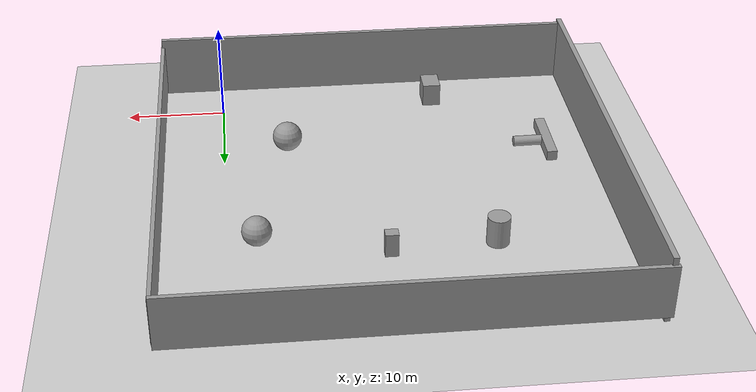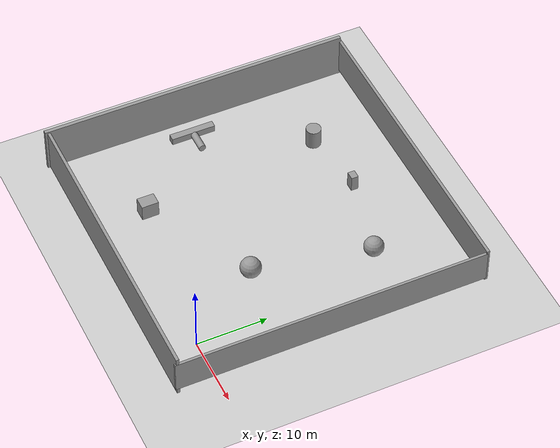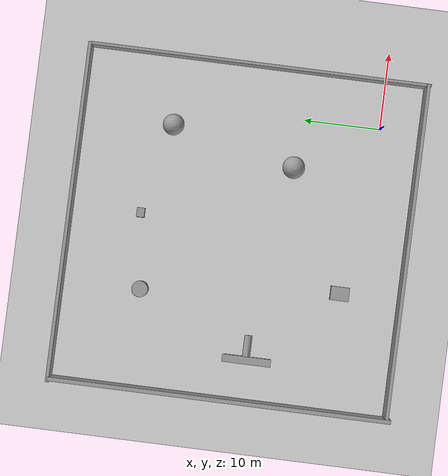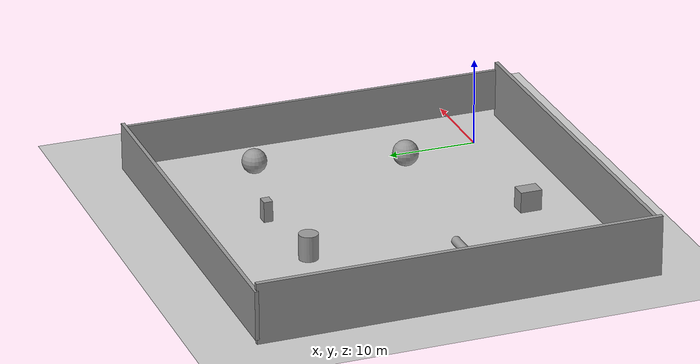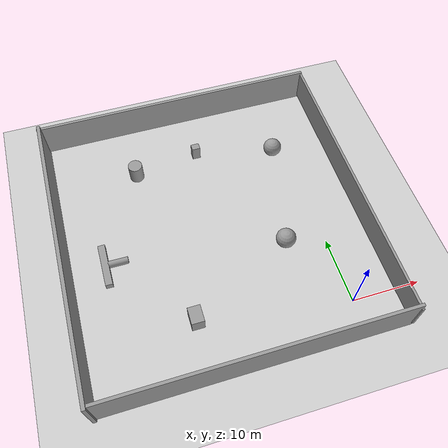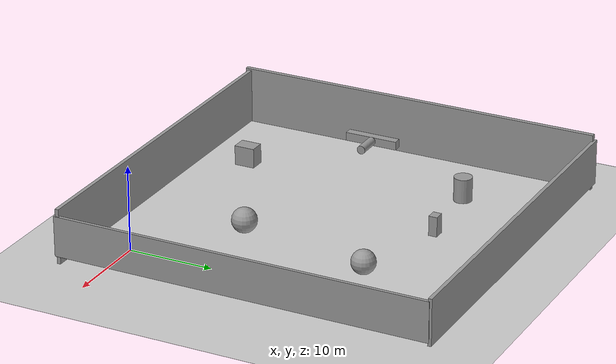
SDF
<sdf version="1.7">
 <world name="default">
  <light name="sun" type="directional">
   <pose>0 0 10 0 -0 0</pose>
   <diffuse>0.8 0.8 0.8 1</diffuse>
   <specular>0.2 0.2 0.2 1</specular>
   <attenuation>
    <range>1000</range>
    <constant>0.9</constant>
    <linear>0.01</linear>
    <quadratic>0.001</quadratic>
   </attenuation>
   <direction>-0.5 0.1 -0.9</direction>
   <spot><inner_angle>0</inner_angle><outer_angle>0</outer_angle><falloff>0</falloff></spot>
  </light>
  <model name="ground_plane">
   <static>1</static>
   <link name="link">
    <collision name="collision">
     <geometry><plane><normal>0 0 1</normal><size>100 100</size></plane></geometry>
     <surface><friction><ode><mu>100</mu><mu2>50</mu2></ode></friction></surface>
    </collision>
    <visual name="visual">
     <cast_shadows>0</cast_shadows>
     <geometry><plane><normal>0 0 1</normal><size>100 100</size></plane></geometry>
     <material>
      <script><uri>file://media/materials/scripts/gazebo.material</uri><name>Gazebo/Grey</name></script>
     </material>
    </visual>
   </link>
  </model>
  <gravity>0 0 -9.8</gravity>
  <magnetic_field>6e-06 2.3e-05 -4.2e-05</magnetic_field>
  <atmosphere type="adiabatic"/>
  <physics type="ode">
   <max_step_size>0.001</max_step_size>
   <real_time_factor>1</real_time_factor>
   <real_time_update_rate>1000</real_time_update_rate>
  </physics>
  <scene><ambient>0.4 0.4 0.4 1</ambient><background>0.7 0.7 0.7 1</background><shadows>1</shadows></scene>
  <spherical_coordinates>
   <surface_model>EARTH_WGS84</surface_model>
   <latitude_deg>0</latitude_deg>
   <longitude_deg>0</longitude_deg>
   <elevation>0</elevation>
   <heading_deg>0</heading_deg>
  </spherical_coordinates>
  <model name="drawmap">
   <link name="link">
    <inertial>
     <mass>125.383</mass>
     <inertia><ixx>439.645</ixx><ixy>0</ixy><ixz>0</ixz><iyy>20672.9</iyy><iyz>0</iyz><izz>20237.3</izz></inertia>
    </inertial>
    <pose>1.9998 -19.5076 -3e-06 0 -0 0</pose>
    <visual name="visual">
     <geometry><box><size>44.0074 0.440499 6.4717</size></box></geometry>
     <material>
      <script><name>Gazebo/Grey</name><uri>file://media/materials/scripts/gazebo.material</uri></script>
      <shader type="pixel"/>
     </material>
    </visual>
    <collision name="collision">
     <geometry><box><size>44.0074 0.440499 6.4717</size></box></geometry>
     <surface>
      <friction>
       <ode><mu>1</mu><mu2>1</mu2><fdir1>0 0 0</fdir1><slip1>0</slip1><slip2>0</slip2></ode>
       <torsional>
        <coefficient>1</coefficient>
        <patch_radius>0</patch_radius>
        <surface_radius>0</surface_radius>
        <use_patch_radius>1</use_patch_radius>
        <ode><slip>0</slip></ode>
       </torsional>
      </friction>
      <bounce><restitution_coefficient>0</restitution_coefficient><threshold>1e+06</threshold></bounce>
      <contact>
       <collide_without_contact>0</collide_without_contact>
       <collide_without_contact_bitmask>1</collide_without_contact_bitmask>
       <collide_bitmask>1</collide_bitmask>
       <ode>
        <soft_cfm>0</soft_cfm>
        <soft_erp>0.2</soft_erp>
        <kp>1e+13</kp>
        <kd>1</kd>
        <max_vel>0.01</max_vel>
        <min_depth>0</min_depth>
       </ode>
       <bullet>
        <split_impulse>1</split_impulse>
        <split_impulse_penetration_threshold>-0.01</split_impulse_penetration_threshold>
        <soft_cfm>0</soft_cfm>
        <soft_erp>0.2</soft_erp>
        <kp>1e+13</kp>
        <kd>1</kd>
       </bullet>
      </contact>
     </surface>
    </collision>
   </link>
   <link name="link_0">
    <inertial>
     <mass>102.937</mass>
     <inertia><ixx>252.539</ixx><ixy>0</ixy><ixz>0</ixz><iyy>17017.1</iyy><iyz>0</iyz><izz>16767.7</izz></inertia>
    </inertial>
    <pose>1.90836 24.4809 -0.000235 -1e-05 0 0</pose>
    <visual name="visual">
     <geometry><box><size>44.21 0.430597 5.40874</size></box></geometry>
     <material>
      <lighting>1</lighting>
      <script><uri>file://media/materials/scripts/gazebo.material</uri><name>Gazebo/Grey</name></script>
      <shader type="pixel"/>
     </material>
    </visual>
    <collision name="collision">
     <geometry><box><size>44.21 0.430597 5.40874</size></box></geometry>
     <surface>
      <friction>
       <ode><mu>1</mu><mu2>1</mu2><fdir1>0 0 0</fdir1><slip1>0</slip1><slip2>0</slip2></ode>
       <torsional>
        <coefficient>1</coefficient>
        <patch_radius>0</patch_radius>
        <surface_radius>0</surface_radius>
        <use_patch_radius>1</use_patch_radius>
        <ode><slip>0</slip></ode>
       </torsional>
      </friction>
      <bounce><restitution_coefficient>0</restitution_coefficient><threshold>1e+06</threshold></bounce>
      <contact>
       <collide_without_contact>0</collide_without_contact>
       <collide_without_contact_bitmask>1</collide_without_contact_bitmask>
       <collide_bitmask>1</collide_bitmask>
       <ode>
        <soft_cfm>0</soft_cfm>
        <soft_erp>0.2</soft_erp>
        <kp>1e+13</kp>
        <kd>1</kd>
        <max_vel>0.01</max_vel>
        <min_depth>0</min_depth>
       </ode>
       <bullet>
        <split_impulse>1</split_impulse>
        <split_impulse_penetration_threshold>-0.01</split_impulse_penetration_threshold>
        <soft_cfm>0</soft_cfm>
        <soft_erp>0.2</soft_erp>
        <kp>1e+13</kp>
        <kd>1</kd>
       </bullet>
      </contact>
     </surface>
    </collision>
   </link>
   <link name="link_1">
    <inertial>
     <mass>79.5946</mass>
     <inertia><ixx>13185.1</ixx><ixy>0</ixy><ixz>0</ixz><iyy>149.915</iyy><iyz>0</iyz><izz>13037.1</izz></inertia>
    </inertial>
    <pose>23.8999 2.25469 -1.7e-05 -1e-05 0 0</pose>
    <visual name="visual">
     <geometry><box><size>0.378952 44.3327 4.73901</size></box></geometry>
     <material>
      <lighting>1</lighting>
      <script><uri>file://media/materials/scripts/gazebo.material</uri><name>Gazebo/Grey</name></script>
      <shader type="pixel"/>
     </material>
    </visual>
    <collision name="collision">
     <geometry><box><size>0.378952 44.3327 4.73901</size></box></geometry>
     <surface>
      <friction>
       <ode><mu>1</mu><mu2>1</mu2><fdir1>0 0 0</fdir1><slip1>0</slip1><slip2>0</slip2></ode>
       <torsional>
        <coefficient>1</coefficient>
        <patch_radius>0</patch_radius>
        <surface_radius>0</surface_radius>
        <use_patch_radius>1</use_patch_radius>
        <ode><slip>0</slip></ode>
       </torsional>
      </friction>
      <bounce><restitution_coefficient>0</restitution_coefficient><threshold>1e+06</threshold></bounce>
      <contact>
       <collide_without_contact>0</collide_without_contact>
       <collide_without_contact_bitmask>1</collide_without_contact_bitmask>
       <collide_bitmask>1</collide_bitmask>
       <ode>
        <soft_cfm>0</soft_cfm>
        <soft_erp>0.2</soft_erp>
        <kp>1e+13</kp>
        <kd>1</kd>
        <max_vel>0.01</max_vel>
        <min_depth>0</min_depth>
       </ode>
       <bullet>
        <split_impulse>1</split_impulse>
        <split_impulse_penetration_threshold>-0.01</split_impulse_penetration_threshold>
        <soft_cfm>0</soft_cfm>
        <soft_erp>0.2</soft_erp>
        <kp>1e+13</kp>
        <kd>1</kd>
       </bullet>
      </contact>
     </surface>
    </collision>
   </link>
   <link name="link_2">
    <inertial>
     <mass>161.549</mass>
     <inertia><ixx>27290.4</ixx><ixy>0</ixy><ixz>0</ixz><iyy>646.814</iyy><iyz>0</iyz><izz>26651</izz></inertia>
    </inertial>
    <pose>-19.7468 2.19871 -1.7e-05 -1e-05 0 0</pose>
    <visual name="visual">
     <geometry><box><size>0.525287 44.4903 6.91158</size></box></geometry>
     <material>
      <lighting>1</lighting>
      <script><uri>file://media/materials/scripts/gazebo.material</uri><name>Gazebo/Grey</name></script>
      <shader type="pixel"/>
     </material>
    </visual>
    <collision name="collision">
     <geometry><box><size>0.525287 44.4903 6.91158</size></box></geometry>
     <surface>
      <friction>
       <ode><mu>1</mu><mu2>1</mu2><fdir1>0 0 0</fdir1><slip1>0</slip1><slip2>0</slip2></ode>
       <torsional>
        <coefficient>1</coefficient>
        <patch_radius>0</patch_radius>
        <surface_radius>0</surface_radius>
        <use_patch_radius>1</use_patch_radius>
        <ode><slip>0</slip></ode>
       </torsional>
      </friction>
      <bounce><restitution_coefficient>0</restitution_coefficient><threshold>1e+06</threshold></bounce>
      <contact>
       <collide_without_contact>0</collide_without_contact>
       <collide_without_contact_bitmask>1</collide_without_contact_bitmask>
       <collide_bitmask>1</collide_bitmask>
       <ode>
        <soft_cfm>0</soft_cfm>
        <soft_erp>0.2</soft_erp>
        <kp>1e+13</kp>
        <kd>1</kd>
        <max_vel>0.01</max_vel>
        <min_depth>0</min_depth>
       </ode>
       <bullet>
        <split_impulse>1</split_impulse>
        <split_impulse_penetration_threshold>-0.01</split_impulse_penetration_threshold>
        <soft_cfm>0</soft_cfm>
        <soft_erp>0.2</soft_erp>
        <kp>1e+13</kp>
        <kd>1</kd>
       </bullet>
      </contact>
     </surface>
    </collision>
   </link>
   <link name="link_3">
    <inertial>
     <mass>10.0397</mass>
     <inertia><ixx>9.39721</ixx><ixy>0</ixy><ixz>0</ixz><iyy>7.2248</iyy><iyz>0</iyz><izz>7.52538</izz></inertia>
    </inertial>
    <pose>-4.21846 -11.5843 0.008663 -1e-05 0 0</pose>
    <visual name="visual">
     <geometry><box><size>1.7886 2.40742 2.33161</size></box></geometry>
     <material>
      <lighting>1</lighting>
      <script><uri>file://media/materials/scripts/gazebo.material</uri><name>Gazebo/Grey</name></script>
      <shader type="pixel"/>
     </material>
    </visual>
    <collision name="collision">
     <geometry><box><size>1.7886 2.40742 2.33161</size></box></geometry>
     <surface>
      <friction>
       <ode><mu>1</mu><mu2>1</mu2><fdir1>0 0 0</fdir1><slip1>0</slip1><slip2>0</slip2></ode>
       <torsional>
        <coefficient>1</coefficient>
        <patch_radius>0</patch_radius>
        <surface_radius>0</surface_radius>
        <use_patch_radius>1</use_patch_radius>
        <ode><slip>0</slip></ode>
       </torsional>
      </friction>
      <bounce><restitution_coefficient>0</restitution_coefficient><threshold>1e+06</threshold></bounce>
      <contact>
       <collide_without_contact>0</collide_without_contact>
       <collide_without_contact_bitmask>1</collide_without_contact_bitmask>
       <collide_bitmask>1</collide_bitmask>
       <ode>
        <soft_cfm>0</soft_cfm>
        <soft_erp>0.2</soft_erp>
        <kp>1e+13</kp>
        <kd>1</kd>
        <max_vel>0.01</max_vel>
        <min_depth>0</min_depth>
       </ode>
       <bullet>
        <split_impulse>1</split_impulse>
        <split_impulse_penetration_threshold>-0.01</split_impulse_penetration_threshold>
        <soft_cfm>0</soft_cfm>
        <soft_erp>0.2</soft_erp>
        <kp>1e+13</kp>
        <kd>1</kd>
       </bullet>
      </contact>
     </surface>
    </collision>
   </link>
   <link name="link_4">
    <inertial>
     <mass>12.7062</mass>
     <inertia><ixx>12.0984</ixx><ixy>0</ixy><ixz>0</ixz><iyy>12.0984</iyy><iyz>0</iyz><izz>7.10261</izz></inertia>
    </inertial>
    <pose>-6.83841 14.1696 -0.000134 -1e-05 0 0</pose>
    <visual name="visual">
     <geometry><cylinder><radius>1.05734</radius><length>2.84113</length></cylinder></geometry>
     <material>
      <lighting>1</lighting>
      <script><uri>file://media/materials/scripts/gazebo.material</uri><name>Gazebo/Grey</name></script>
      <shader type="pixel"/>
     </material>
    </visual>
    <collision name="collision">
     <geometry><cylinder><radius>1.05734</radius><length>2.84113</length></cylinder></geometry>
     <surface>
      <friction>
       <ode><mu>1</mu><mu2>1</mu2><fdir1>0 0 0</fdir1><slip1>0</slip1><slip2>0</slip2></ode>
       <torsional>
        <coefficient>1</coefficient>
        <patch_radius>0</patch_radius>
        <surface_radius>0</surface_radius>
        <use_patch_radius>1</use_patch_radius>
        <ode><slip>0</slip></ode>
       </torsional>
      </friction>
      <bounce><restitution_coefficient>0</restitution_coefficient><threshold>1e+06</threshold></bounce>
      <contact>
       <collide_without_contact>0</collide_without_contact>
       <collide_without_contact_bitmask>1</collide_without_contact_bitmask>
       <collide_bitmask>1</collide_bitmask>
       <ode>
        <soft_cfm>0</soft_cfm>
        <soft_erp>0.2</soft_erp>
        <kp>1e+13</kp>
        <kd>1</kd>
        <max_vel>0.01</max_vel>
        <min_depth>0</min_depth>
       </ode>
       <bullet>
        <split_impulse>1</split_impulse>
        <split_impulse_penetration_threshold>-0.01</split_impulse_penetration_threshold>
        <soft_cfm>0</soft_cfm>
        <soft_erp>0.2</soft_erp>
        <kp>1e+13</kp>
        <kd>1</kd>
       </bullet>
      </contact>
     </surface>
    </collision>
   </link>
   <link name="link_5">
    <inertial>
     <mass>21.2102</mass>
     <inertia><ixx>16.252</ixx><ixy>0</ixy><ixz>0</ixz><iyy>16.252</iyy><iyz>0</iyz><izz>16.252</izz></inertia>
    </inertial>
    <pose>14.861 12.5331 0.125649 -1e-05 0 0</pose>
    <visual name="visual">
     <geometry><sphere><radius>1.38405</radius></sphere></geometry>
     <material>
      <lighting>1</lighting>
      <script><uri>file://media/materials/scripts/gazebo.material</uri><name>Gazebo/Grey</name></script>
      <shader type="pixel"/>
     </material>
    </visual>
    <collision name="collision">
     <geometry><sphere><radius>1.38405</radius></sphere></geometry>
     <surface>
      <friction>
       <ode><mu>1</mu><mu2>1</mu2><fdir1>0 0 0</fdir1><slip1>0</slip1><slip2>0</slip2></ode>
       <torsional>
        <coefficient>1</coefficient>
        <patch_radius>0</patch_radius>
        <surface_radius>0</surface_radius>
        <use_patch_radius>1</use_patch_radius>
        <ode><slip>0</slip></ode>
       </torsional>
      </friction>
      <bounce><restitution_coefficient>0</restitution_coefficient><threshold>1e+06</threshold></bounce>
      <contact>
       <collide_without_contact>0</collide_without_contact>
       <collide_without_contact_bitmask>1</collide_without_contact_bitmask>
       <collide_bitmask>1</collide_bitmask>
       <ode>
        <soft_cfm>0</soft_cfm>
        <soft_erp>0.2</soft_erp>
        <kp>1e+13</kp>
        <kd>1</kd>
        <max_vel>0.01</max_vel>
        <min_depth>0</min_depth>
       </ode>
       <bullet>
        <split_impulse>1</split_impulse>
        <split_impulse_penetration_threshold>-0.01</split_impulse_penetration_threshold>
        <soft_cfm>0</soft_cfm>
        <soft_erp>0.2</soft_erp>
        <kp>1e+13</kp>
        <kd>1</kd>
       </bullet>
      </contact>
     </surface>
    </collision>
   </link>
   <link name="link_6">
    <inertial>
     <mass>24.433</mass>
     <inertia><ixx>20.5727</ixx><ixy>0</ixy><ixz>0</ixz><iyy>20.5727</iyy><iyz>0</iyz><izz>20.5727</izz></inertia>
    </inertial>
    <pose>11.2895 -3.63527 4e-05 -1e-05 0 0</pose>
    <visual name="visual">
     <geometry><sphere><radius>1.45087</radius></sphere></geometry>
     <material>
      <lighting>1</lighting>
      <script><uri>file://media/materials/scripts/gazebo.material</uri><name>Gazebo/Grey</name></script>
      <shader type="pixel"/>
     </material>
    </visual>
    <collision name="collision">
     <geometry><sphere><radius>1.45087</radius></sphere></geometry>
     <surface>
      <friction>
       <ode><mu>1</mu><mu2>1</mu2><fdir1>0 0 0</fdir1><slip1>0</slip1><slip2>0</slip2></ode>
       <torsional>
        <coefficient>1</coefficient>
        <patch_radius>0</patch_radius>
        <surface_radius>0</surface_radius>
        <use_patch_radius>1</use_patch_radius>
        <ode><slip>0</slip></ode>
       </torsional>
      </friction>
      <bounce><restitution_coefficient>0</restitution_coefficient><threshold>1e+06</threshold></bounce>
      <contact>
       <collide_without_contact>0</collide_without_contact>
       <collide_without_contact_bitmask>1</collide_without_contact_bitmask>
       <collide_bitmask>1</collide_bitmask>
       <ode>
        <soft_cfm>0</soft_cfm>
        <soft_erp>0.2</soft_erp>
        <kp>1e+13</kp>
        <kd>1</kd>
        <max_vel>0.01</max_vel>
        <min_depth>0</min_depth>
       </ode>
       <bullet>
        <split_impulse>1</split_impulse>
        <split_impulse_penetration_threshold>-0.01</split_impulse_penetration_threshold>
        <soft_cfm>0</soft_cfm>
        <soft_erp>0.2</soft_erp>
        <kp>1e+13</kp>
        <kd>1</kd>
       </bullet>
      </contact>
     </surface>
    </collision>
   </link>
   <link name="link_7">
    <inertial>
     <mass>2.85741</mass>
     <inertia><ixx>1.52346</ixx><ixy>0</ixy><ixz>0</ixz><iyy>1.64552</iyy><iyz>0</iyz><izz>0.598295</izz></inertia>
    </inertial>
    <pose>2.99276 15.3201 -0.000145 -1e-05 0 0</pose>
    <visual name="visual">
     <geometry><box><size>1.22988 1 2.32334</size></box></geometry>
     <material>
      <lighting>1</lighting>
      <script><uri>file://media/materials/scripts/gazebo.material</uri><name>Gazebo/Grey</name></script>
      <shader type="pixel"/>
     </material>
    </visual>
    <collision name="collision">
     <geometry><box><size>1.22988 1 2.32334</size></box></geometry>
     <surface>
      <friction>
       <ode><mu>1</mu><mu2>1</mu2><fdir1>0 0 0</fdir1><slip1>0</slip1><slip2>0</slip2></ode>
       <torsional>
        <coefficient>1</coefficient>
        <patch_radius>0</patch_radius>
        <surface_radius>0</surface_radius>
        <use_patch_radius>1</use_patch_radius>
        <ode><slip>0</slip></ode>
       </torsional>
      </friction>
      <bounce><restitution_coefficient>0</restitution_coefficient><threshold>1e+06</threshold></bounce>
      <contact>
       <collide_without_contact>0</collide_without_contact>
       <collide_without_contact_bitmask>1</collide_without_contact_bitmask>
       <collide_bitmask>1</collide_bitmask>
       <ode>
        <soft_cfm>0</soft_cfm>
        <soft_erp>0.2</soft_erp>
        <kp>1e+13</kp>
        <kd>1</kd>
        <max_vel>0.01</max_vel>
        <min_depth>0</min_depth>
       </ode>
       <bullet>
        <split_impulse>1</split_impulse>
        <split_impulse_penetration_threshold>-0.01</split_impulse_penetration_threshold>
        <soft_cfm>0</soft_cfm>
        <soft_erp>0.2</soft_erp>
        <kp>1e+13</kp>
        <kd>1</kd>
       </bullet>
      </contact>
     </surface>
    </collision>
   </link>
   <link name="link_8">
    <inertial>
     <mass>6.3232</mass>
     <inertia><ixx>21.5953</ixx><ixy>0</ixy><ixz>0</ixz><iyy>1.05387</iyy><iyz>0</iyz><izz>21.5953</izz></inertia>
    </inertial>
    <pose>-14.3142 -0.664974 1.1e-05 -1e-05 0 0</pose>
    <visual name="visual">
     <geometry><box><size>1 6.32322 1</size></box></geometry>
     <material>
      <lighting>1</lighting>
      <script><uri>file://media/materials/scripts/gazebo.material</uri><name>Gazebo/Grey</name></script>
      <shader type="pixel"/>
     </material>
    </visual>
    <collision name="collision">
     <geometry><box><size>1 6.32322 1</size></box></geometry>
     <surface>
      <friction>
       <ode><mu>1</mu><mu2>1</mu2><fdir1>0 0 0</fdir1><slip1>0</slip1><slip2>0</slip2></ode>
       <torsional>
        <coefficient>1</coefficient>
        <patch_radius>0</patch_radius>
        <surface_radius>0</surface_radius>
        <use_patch_radius>1</use_patch_radius>
        <ode><slip>0</slip></ode>
       </torsional>
      </friction>
      <bounce><restitution_coefficient>0</restitution_coefficient><threshold>1e+06</threshold></bounce>
      <contact>
       <collide_without_contact>0</collide_without_contact>
       <collide_without_contact_bitmask>1</collide_without_contact_bitmask>
       <collide_bitmask>1</collide_bitmask>
       <ode>
        <soft_cfm>0</soft_cfm>
        <soft_erp>0.2</soft_erp>
        <kp>1e+13</kp>
        <kd>1</kd>
        <max_vel>0.01</max_vel>
        <min_depth>0</min_depth>
       </ode>
       <bullet>
        <split_impulse>1</split_impulse>
        <split_impulse_penetration_threshold>-0.01</split_impulse_penetration_threshold>
        <soft_cfm>0</soft_cfm>
        <soft_erp>0.2</soft_erp>
        <kp>1e+13</kp>
        <kd>1</kd>
       </bullet>
      </contact>
     </surface>
    </collision>
   </link>
   <link name="link_9">
    <inertial>
     <mass>2.83157</mass>
     <inertia><ixx>2.06889</ixx><ixy>0</ixy><ixz>0</ixz><iyy>2.06889</iyy><iyz>0</iyz><izz>0.353946</izz></inertia>
    </inertial>
    <pose>-12.4784 -0.571646 0.004403 -3.14066 1.5603 -3.14066</pose>
    <visual name="visual">
     <geometry><cylinder><radius>0.5</radius><length>2.83157</length></cylinder></geometry>
     <material>
      <lighting>1</lighting>
      <script><uri>file://media/materials/scripts/gazebo.material</uri><name>Gazebo/Grey</name></script>
      <shader type="pixel"/>
     </material>
    </visual>
    <collision name="collision">
     <geometry><cylinder><radius>0.5</radius><length>2.83157</length></cylinder></geometry>
     <surface>
      <friction>
       <ode><mu>1</mu><mu2>1</mu2><fdir1>0 0 0</fdir1><slip1>0</slip1><slip2>0</slip2></ode>
       <torsional>
        <coefficient>1</coefficient>
        <patch_radius>0</patch_radius>
        <surface_radius>0</surface_radius>
        <use_patch_radius>1</use_patch_radius>
        <ode><slip>0</slip></ode>
       </torsional>
      </friction>
      <bounce><restitution_coefficient>0</restitution_coefficient><threshold>1e+06</threshold></bounce>
      <contact>
       <collide_without_contact>0</collide_without_contact>
       <collide_without_contact_bitmask>1</collide_without_contact_bitmask>
       <collide_bitmask>1</collide_bitmask>
       <ode>
        <soft_cfm>0</soft_cfm>
        <soft_erp>0.2</soft_erp>
        <kp>1e+13</kp>
        <kd>1</kd>
        <max_vel>0.01</max_vel>
        <min_depth>0</min_depth>
       </ode>
       <bullet>
        <split_impulse>1</split_impulse>
        <split_impulse_penetration_threshold>-0.01</split_impulse_penetration_threshold>
        <soft_cfm>0</soft_cfm>
        <soft_erp>0.2</soft_erp>
        <kp>1e+13</kp>
        <kd>1</kd>
       </bullet>
      </contact>
     </surface>
    </collision>
   </link>
   <static>0</static>
   <pose>-17.7249 14.2681 3.23669 4.2e-05 -0 3e-06</pose>
  </model>
 </world>
</sdf>
